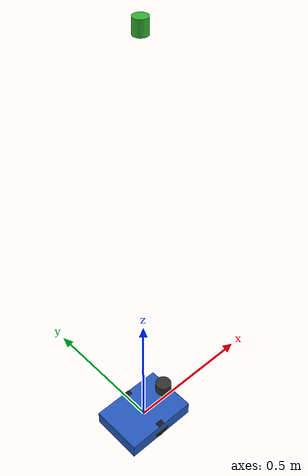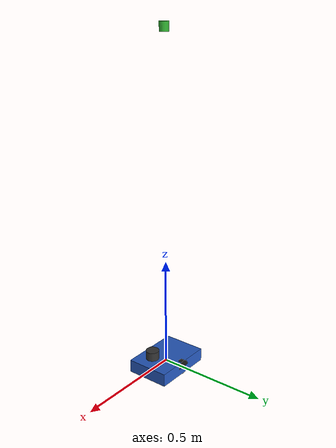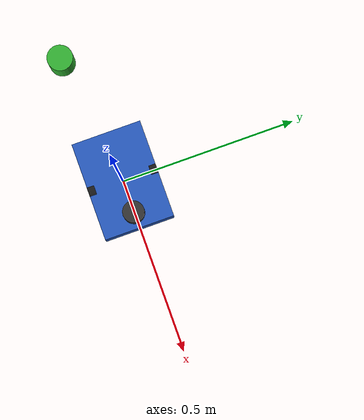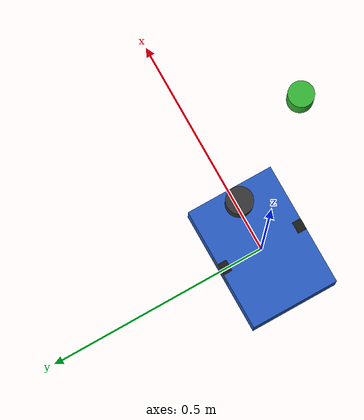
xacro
<?xml version="1.0"?>
<robot xmlns:xacro="http://www.ros.org/wiki/xacro" name="h2track_bot">
  <xacro:property name="base_length" value="0.28"/>
  <xacro:property name="base_width" value="0.20"/>
  <xacro:property name="base_height" value="0.06"/>
  <xacro:property name="wheel_radius" value="0.033"/>
  <xacro:property name="wheel_width" value="0.02"/>
  <xacro:property name="wheel_sep" value="0.18"/>

  <link name="base_link">
    <inertial>
      <origin xyz="0 0 0"/>
      <mass value="1.2"/>
      <inertia ixx="0.002" ixy="0.0" ixz="0.0" iyy="0.003" iyz="0.0" izz="0.004"/>
    </inertial>
    <visual>
      <geometry>
        <box size="${base_length} ${base_width} ${base_height}"/>
      </geometry>
      <material name="blue">
        <color rgba="0.15 0.35 0.75 1.0"/>
      </material>
    </visual>
    <collision>
      <geometry>
        <box size="${base_length} ${base_width} ${base_height}"/>
      </geometry>
    </collision>
  </link>

  <link name="left_wheel">
    <visual>
      <origin xyz="0 0 0" rpy="1.5707 0 0"/>
      <geometry>
        <cylinder length="${wheel_width}" radius="${wheel_radius}"/>
      </geometry>
      <material name="black">
        <color rgba="0.1 0.1 0.1 1.0"/>
      </material>
    </visual>
    <collision>
      <origin xyz="0 0 0" rpy="1.5707 0 0"/>
      <geometry>
        <cylinder length="${wheel_width}" radius="${wheel_radius}"/>
      </geometry>
    </collision>
    <inertial>
      <mass value="0.1"/>
      <inertia ixx="0.0001" ixy="0.0" ixz="0.0" iyy="0.0001" iyz="0.0" izz="0.0001"/>
    </inertial>
  </link>

  <link name="right_wheel">
    <visual>
      <origin xyz="0 0 0" rpy="1.5707 0 0"/>
      <geometry>
        <cylinder length="${wheel_width}" radius="${wheel_radius}"/>
      </geometry>
      <material name="black">
        <color rgba="0.1 0.1 0.1 1.0"/>
      </material>
    </visual>
    <collision>
      <origin xyz="0 0 0" rpy="1.5707 0 0"/>
      <geometry>
        <cylinder length="${wheel_width}" radius="${wheel_radius}"/>
      </geometry>
    </collision>
    <inertial>
      <mass value="0.1"/>
      <inertia ixx="0.0001" ixy="0.0" ixz="0.0" iyy="0.0001" iyz="0.0" izz="0.0001"/>
    </inertial>
  </link>

  <link name="laser_link">
    <visual>
      <geometry>
        <cylinder radius="0.03" length="0.04"/>
      </geometry>
      <material name="dark_gray">
        <color rgba="0.2 0.2 0.2 1.0"/>
      </material>
    </visual>
    <collision>
      <geometry>
        <cylinder radius="0.03" length="0.04"/>
      </geometry>
    </collision>
    <inertial>
      <mass value="0.08"/>
      <inertia ixx="0.00005" ixy="0.0" ixz="0.0" iyy="0.00005" iyz="0.0" izz="0.00005"/>
    </inertial>
  </link>

  <link name="gas_sensor_link">
    <visual>
      <geometry>
        <cylinder radius="0.02" length="0.04"/>
      </geometry>
      <material name="green">
        <color rgba="0.2 0.7 0.2 1.0"/>
      </material>
    </visual>
    <collision>
      <geometry>
        <cylinder radius="0.02" length="0.04"/>
      </geometry>
    </collision>
    <inertial>
      <mass value="0.05"/>
      <inertia ixx="0.00002" ixy="0.0" ixz="0.0" iyy="0.00002" iyz="0.0" izz="0.00002"/>
    </inertial>
  </link>

  <joint name="left_wheel_joint" type="continuous">
    <parent link="base_link"/>
    <child link="left_wheel"/>
    <origin xyz="0 0.09 0"/>
    <axis xyz="0 1 0"/>
  </joint>

  <joint name="right_wheel_joint" type="continuous">
    <parent link="base_link"/>
    <child link="right_wheel"/>
    <origin xyz="0 -0.09 0"/>
    <axis xyz="0 1 0"/>
  </joint>

  <joint name="laser_joint" type="fixed">
    <parent link="base_link"/>
    <child link="laser_link"/>
    <origin xyz="0.10 0 0.08"/>
  </joint>

  <joint name="gas_sensor_joint" type="fixed">
    <parent link="base_link"/>
    <child link="gas_sensor_link"/>
    <!-- Elevated sensor height (1.5m) to detect rising H2 gas -->
    <origin xyz="0 0 1.5"/>
  </joint>

  <gazebo reference="base_link">
    <material>Gazebo/Blue</material>
  </gazebo>

  <gazebo reference="left_wheel">
    <material>Gazebo/Black</material>
  </gazebo>

  <gazebo reference="right_wheel">
    <material>Gazebo/Black</material>
  </gazebo>

  <gazebo reference="laser_link">
    <sensor name="laser" type="ray">
      <always_on>true</always_on>
      <visualize>true</visualize>
      <update_rate>10</update_rate>
      <pose>0 0 0 0 0 0</pose>
      <ray>
        <scan>
          <horizontal>
            <samples>360</samples>
            <resolution>1</resolution>
            <min_angle>-3.14159</min_angle>
            <max_angle>3.14159</max_angle>
          </horizontal>
        </scan>
        <range>
          <min>0.12</min>
          <max>8.0</max>
          <resolution>0.01</resolution>
        </range>
        <noise>
          <type>gaussian</type>
          <mean>0.0</mean>
          <stddev>0.01</stddev>
        </noise>
      </ray>
      <plugin name="laser_plugin" filename="libgazebo_ros_ray_sensor.so">
        <ros>
          <remapping>~/out:=scan</remapping>
        </ros>
        <output_type>sensor_msgs/LaserScan</output_type>
        <frame_name>laser_link</frame_name>
      </plugin>
    </sensor>
  </gazebo>

  <gazebo>
    <plugin name="diff_drive" filename="libgazebo_ros_diff_drive.so">
      <ros>
        <remapping>cmd_vel:=cmd_vel</remapping>
        <remapping>odom:=odom</remapping>
      </ros>
      <left_joint>left_wheel_joint</left_joint>
      <right_joint>right_wheel_joint</right_joint>
      <wheel_separation>${wheel_sep}</wheel_separation>
      <wheel_diameter>${2.0 * wheel_radius}</wheel_diameter>
      <max_wheel_torque>20.0</max_wheel_torque>
      <max_wheel_acceleration>1.0</max_wheel_acceleration>
      <command_topic>cmd_vel</command_topic>
      <odometry_topic>odom</odometry_topic>
      <robot_base_frame>base_link</robot_base_frame>
      <publish_odom>true</publish_odom>
      <publish_odom_tf>true</publish_odom_tf>
      <publish_wheel_tf>true</publish_wheel_tf>
      <update_rate>50</update_rate>
    </plugin>
  </gazebo>
</robot>
